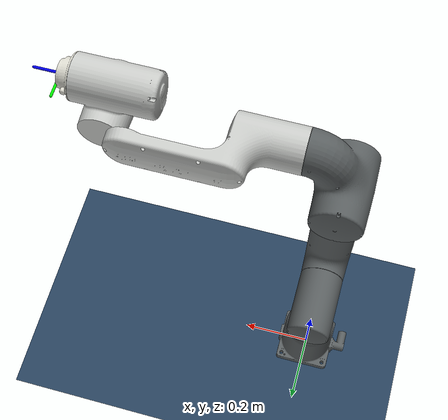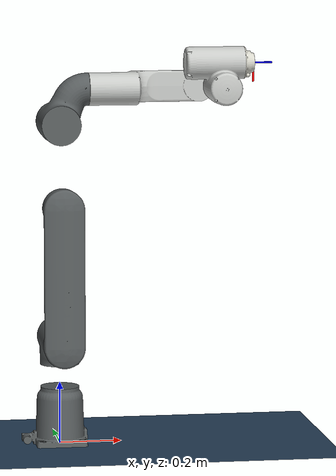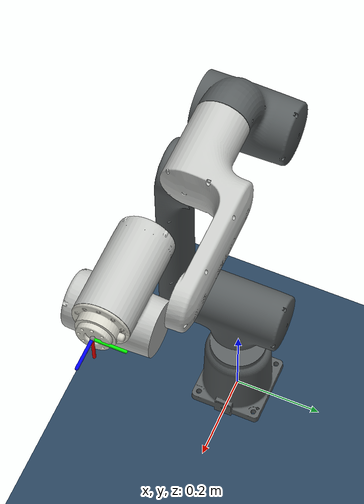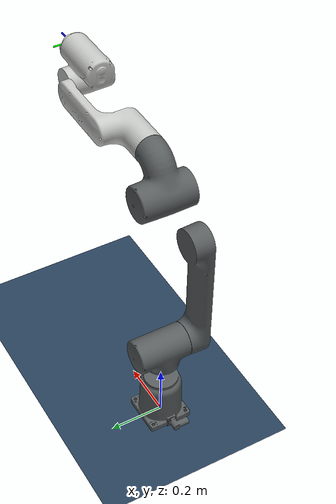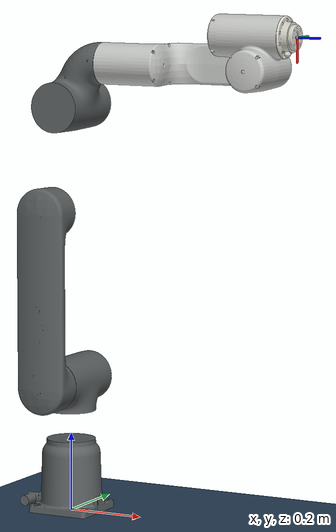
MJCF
<?xml version="1.0" encoding="utf-8"?>
<mujoco model="GoFa12 scene">
  <compiler autolimits="true" balanceinertia="true" angle="radian" coordinate="local"/>
  <option integrator="implicitfast"/>
  <option gravity="0 0 0"/>
  <size memory="2M"/>

  <visual>
    <global azimuth="120" elevation="-20"/>
    <headlight diffuse="0.6 0.6 0.6" ambient="0.1 0.1 0.1" specular="0 0 0"/>
    <rgba haze="0.15 0.25 0.35 1"/>
  </visual>

  <default>
    <default class="Gofa12/">
      <material specular="0.5" shininess="0.25"/>
      <default class="gofa12/type_joint1">
        <joint range="-3.141592653589793 3.141592653589793"/>
        <general ctrlrange="-3.141592653589793 3.141592653589793"/>
      </default>

      <!-- Visuals: draw only (group 2), no collisions -->
      <default class="Gofa12/visual">
        <geom type="mesh" group="2" contype="0" conaffinity="0"/>
      </default>

      <!-- Collisions: collide (group 3). We’ll override type to mesh on each geom. -->
      <default class="Gofa12/collision">
        <geom group="3" contype="1" conaffinity="1" rgba="1 0 0 0.35"/>
        <default class="Gofa12/eef_collision">
          <geom type="cylinder"/>
        </default>
      </default>
    </default>
  </default>

  <asset>
    <!-- skybox / ground -->
    <texture type="skybox" builtin="gradient" rgb1="0.3 0.5 0.7" rgb2="0 0 0" width="512" height="3072"/>
    <texture type="2d" name="groundplane" builtin="checker" mark="edge"
             rgb1="0.2 0.3 0.4" rgb2="0.1 0.2 0.3" markrgb="0.8 0.8 0.8" width="300" height="300"/>
    <material name="groundplane" texture="groundplane" texuniform="true" texrepeat="5 5" reflectance="0.2"/>

    <!-- materials -->
    <material name="Gofa12/grey"  class="Gofa12/" rgba="0.3450980 0.3647059 0.3686275 1"/>
    <material name="Gofa12/light" class="Gofa12/" rgba="0.7725490 0.7803922 0.7686275 1"/>
    <material name="Gofa12/cream" class="Gofa12/" rgba="0.8392157 0.8352941 0.7921569 1"/>

    <!-- VISUAL meshes -->
    <mesh name="Gofa12_vis/base"  class="Gofa12/" file="visual/base_link.stl" scale="1 1 1"/>
    <mesh name="Gofa12_vis/link1" class="Gofa12/" file="visual/link_1.stl"   scale="1 1 1"/>
    <mesh name="Gofa12_vis/link2" class="Gofa12/" file="visual/link_2.stl"   scale="1 1 1"/>
    <mesh name="Gofa12_vis/link3" class="Gofa12/" file="visual/link_3.stl"   scale="1 1 1"/>
    <mesh name="Gofa12_vis/link4" class="Gofa12/" file="visual/link_4.stl"   scale="1 1 1"/>
    <mesh name="Gofa12_vis/link5" class="Gofa12/" file="visual/link_5.stl"   scale="1 1 1"/>
    <mesh name="Gofa12_vis/link6" class="Gofa12/" file="visual/link_6.stl"   scale="1 1 1"/>

    <!-- COLLISION meshes -->
    <mesh name="Gofa12_col/base"  class="Gofa12/" file="collision/base_link.stl" scale="1 1 1"/>
    <mesh name="Gofa12_col/link1" class="Gofa12/" file="collision/link_1.stl"   scale="1 1 1"/>
    <mesh name="Gofa12_col/link2" class="Gofa12/" file="collision/link_2.stl"   scale="1 1 1"/>
    <mesh name="Gofa12_col/link3" class="Gofa12/" file="collision/link_3.stl"   scale="1 1 1"/>
    <mesh name="Gofa12_col/link4" class="Gofa12/" file="collision/link_4.stl"   scale="1 1 1"/>
    <mesh name="Gofa12_col/link5" class="Gofa12/" file="collision/link_5.stl"   scale="1 1 1"/>
    <mesh name="Gofa12_col/link6" class="Gofa12/" file="collision/link_6.stl"   scale="1 1 1"/>
  </asset>

  <worldbody>
    <light pos="0 0 1.5" dir="0 0 -1" directional="true"/>
    <geom name="floor" size="0 0 0.5" type="plane" material="groundplane"/>

    <!-- Robot -->
    <body name="Gofa12/Robot" pos="0 0 0">
      <body name="Gofa12/Base" pos="0 0 0">
        <!-- base -->
        <geom name="Gofa12/base_visual"    class="Gofa12/visual"   material="Gofa12/grey"  mesh="Gofa12_vis/base"/>
        <geom name="Gofa12/base_collision" class="Gofa12/collision" type="mesh"            mesh="Gofa12_col/base"/>

        <!-- joint_1: origin 0 0 0.338 ; axis=0 0 1 ; range +/- 4.712... -->
        <body name="Gofa12/1st_link" pos="0 0 0.338" euler="0 0 0">
          <joint name="Gofa12/J1" class="gofa12/type_joint1" axis="0 0 1"
                 range="-4.71238898038469 4.71238898038469"/>
          <geom name="Gofa12/link1_visual"    class="Gofa12/visual"   material="Gofa12/grey" mesh="Gofa12_vis/link1"/>
          <geom name="Gofa12/link1_collision" class="Gofa12/collision" type="mesh"           mesh="Gofa12_col/link1"/>

          <!-- joint_2: origin 0 0 0 ; axis 0 1 0 -->
          <body name="Gofa12/2nd_link" pos="0 0 0" euler="0 0 0">
            <joint name="Gofa12/J2" class="gofa12/type_joint1" axis="0 1 0"/>
            <geom name="Gofa12/link2_visual"    class="Gofa12/visual"   material="Gofa12/grey" mesh="Gofa12_vis/link2"/>
            <geom name="Gofa12/link2_collision" class="Gofa12/collision" type="mesh"           mesh="Gofa12_col/link2"/>

            <!-- joint_3: origin 0 0 0.707 ; axis 0 1 0 ; range [-3.92699, 1.48353] -->
            <body name="Gofa12/3rd_link" pos="0 0 0.707" euler="0 0 0">
              <joint name="Gofa12/J3" axis="0 1 0"
                     range="-3.9269908169872414 1.4835298641951802"/>
              <geom name="Gofa12/link3_visual"    class="Gofa12/visual"   material="Gofa12/grey" mesh="Gofa12_vis/link3"/>
              <geom name="Gofa12/link3_collision" class="Gofa12/collision" type="mesh"           mesh="Gofa12_col/link3"/>

              <!-- joint_4: origin 0 0 0.110 ; axis 1 0 0 -->
              <body name="Gofa12/4th_link" pos="0 0 0.110" euler="0 0 0">
                <joint name="Gofa12/J4" class="gofa12/type_joint1" axis="1 0 0"/>
                <geom name="Gofa12/link4_visual"    class="Gofa12/visual"   material="Gofa12/light" mesh="Gofa12_vis/link4"/>
                <geom name="Gofa12/link4_collision" class="Gofa12/collision" type="mesh"            mesh="Gofa12_col/link4"/>

                <!-- joint_5: origin 0.534 0 0 ; axis 0 1 0 -->
                <body name="Gofa12/5th_link" pos="0.534 0 0" euler="0 0 0">
                  <joint name="Gofa12/J5" class="gofa12/type_joint1" axis="0 1 0"/>
                  <geom name="Gofa12/link5_visual"    class="Gofa12/visual"   material="Gofa12/light" mesh="Gofa12_vis/link5"/>
                  <geom name="Gofa12/link5_collision" class="Gofa12/collision" type="mesh"            mesh="Gofa12_col/link5"/>

                  <!-- joint_6: origin 0.101 0 0.080 ; axis 1 0 0 ; range +/- 4.712... -->
                  <body name="Gofa12/6th_link" pos="0.101 0 0.080" euler="0 0 0">
                    <joint name="Gofa12/J6" axis="1 0 0"
                           range="-4.71238898038469 4.71238898038469"/>
                    <geom name="Gofa12/link6_visual"    class="Gofa12/visual"   material="Gofa12/cream" mesh="Gofa12_vis/link6"/>
                    <geom name="Gofa12/link6_collision" class="Gofa12/collision" type="mesh"            mesh="Gofa12_col/link6"/>

                    <!-- tool0 rotation: RPY (0, +90deg, 0) -->
                    <site name="ee_site" pos="0 0 0" quat="0.70710678 0 0.70710678 0"/>

                    <!-- Optional: axes at tool frame -->
                    <body name="ee_frame_visual_only" pos="0 0 0" quat="0.70710678 0 0.70710678 0">
                      <geom type="capsule" fromto="0 0 0 0.05 0 0" rgba="1 0 0 1" size="0.002" contype="0" conaffinity="0"/>
                      <geom type="capsule" fromto="0 0 0 0 0.05 0" rgba="0 1 0 1" size="0.002" contype="0" conaffinity="0"/>
                      <geom type="capsule" fromto="0 0 0 0 0 0.05" rgba="0 0 1 1" size="0.002" contype="0" conaffinity="0"/>

                      <body name="tool_frame" pos="0 0 0" quat="1 0 0 0">
                        <site name="tool_site" pos="0 0 0" quat="1 0 0 0"/>
                        <geom type="capsule" fromto="0 0 0 0.06 0 0" rgba="1 0 0 1" size="0.003" contype="0" conaffinity="0"/>
                        <geom type="capsule" fromto="0 0 0 0 0.06 0" rgba="0 1 0 1" size="0.003" contype="0" conaffinity="0"/>
                        <geom type="capsule" fromto="0 0 0 0 0 0.06" rgba="0 0 1 1" size="0.003" contype="0" conaffinity="0"/>
                      </body>
                    </body>
                  </body>
                </body>
              </body>
            </body>
          </body>
        </body>
      </body>
    </body>
  </worldbody>

  <actuator>
    <general name="Gofa12/shoulder_pan"  class="gofa12/type_joint1" joint="Gofa12/J1"
             ctrlrange="-4.71238898038469 4.71238898038469"/>
    <general name="Gofa12/shoulder_lift" class="gofa12/type_joint1" joint="Gofa12/J2"/>
    <general name="Gofa12/elbow"         joint="Gofa12/J3"
             ctrlrange="-3.9269908169872414 1.4835298641951802"/>
    <general name="Gofa12/wrist_1"       class="gofa12/type_joint1" joint="Gofa12/J4"/>
    <general name="Gofa12/wrist_2"       class="gofa12/type_joint1" joint="Gofa12/J5"/>
    <general name="Gofa12/wrist_3"       joint="Gofa12/J6"
             ctrlrange="-4.71238898038469 4.71238898038469"/>
  </actuator>
</mujoco>
